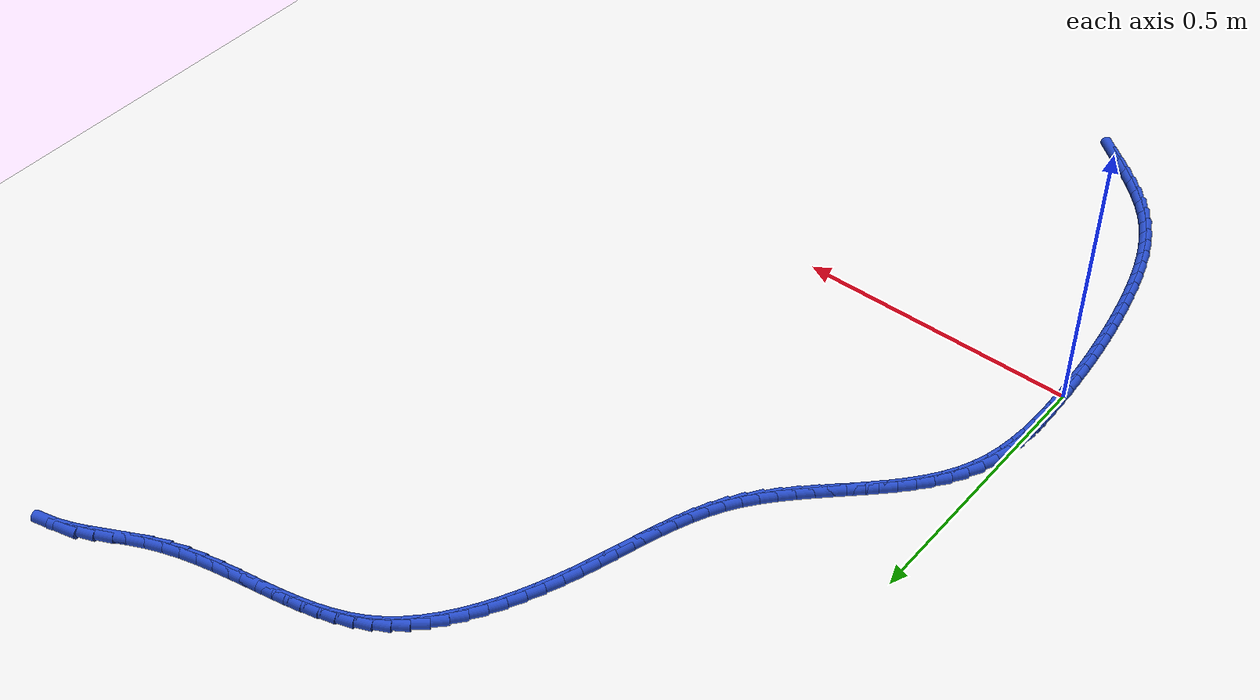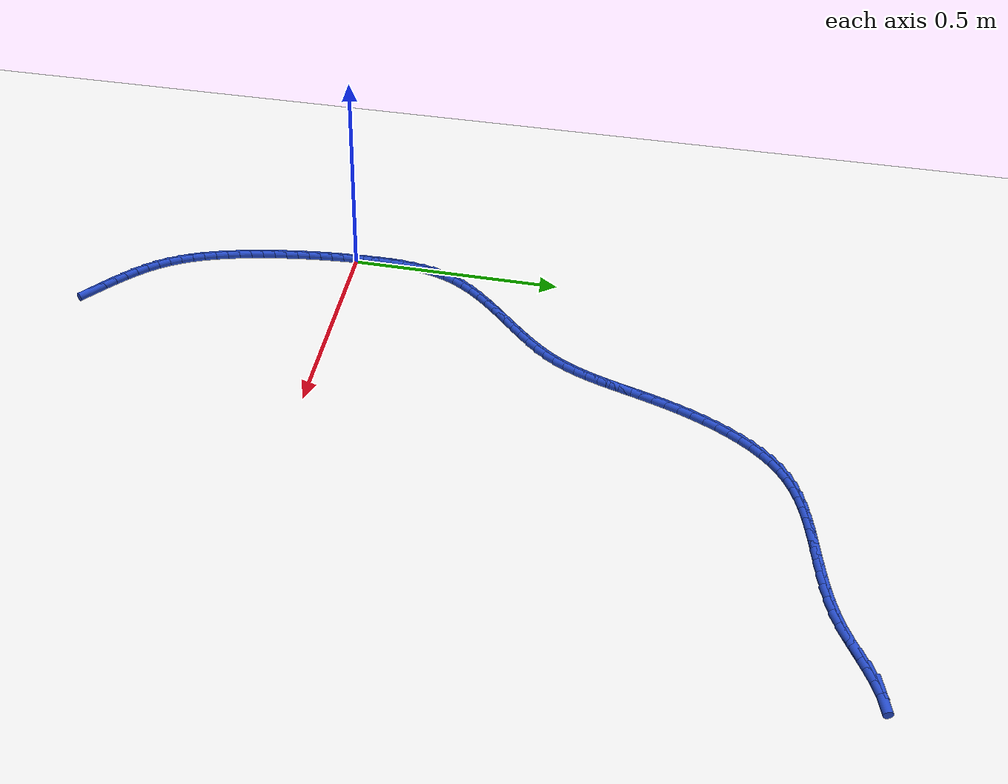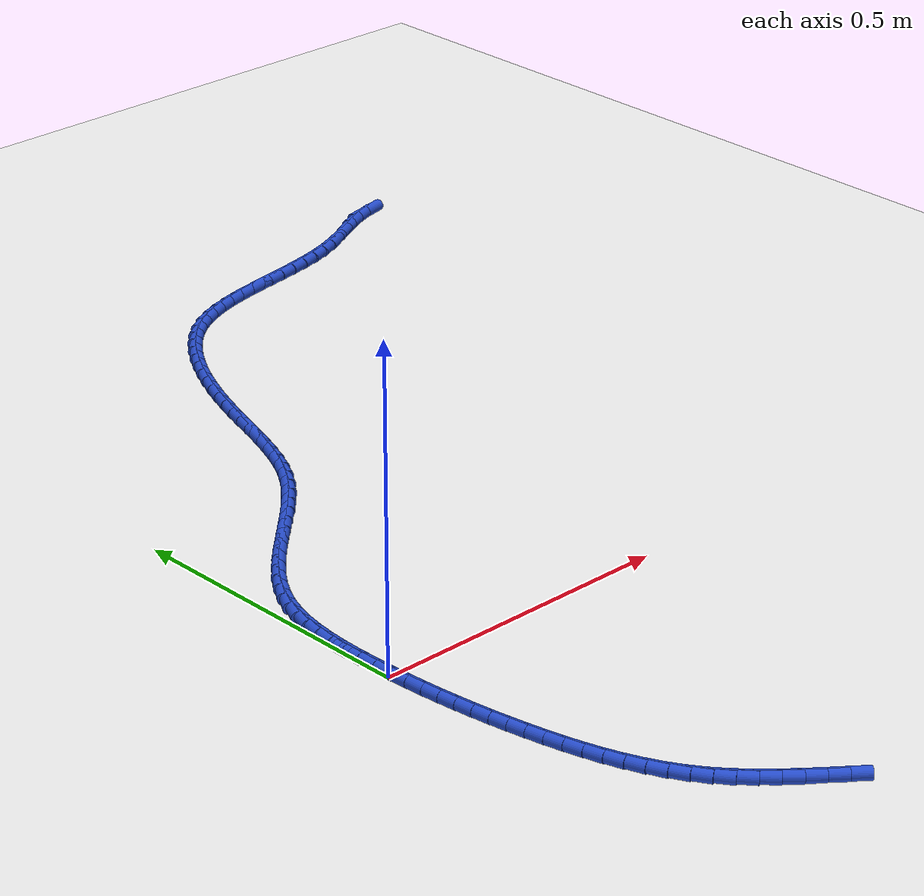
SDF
<sdf version="1.6">
 <world name="default">
  <model name="ground_plane">
   <static>1</static>
   <link name="link">
    <collision name="collision">
     <geometry><plane><normal>0 0 1</normal><size>100 100</size></plane></geometry>
     <surface><friction><ode><mu>100</mu><mu2>50</mu2></ode></friction></surface>
    </collision>
    <visual name="visual">
     <cast_shadows>0</cast_shadows>
     <geometry><plane><normal>0 0 1</normal><size>100 100</size></plane></geometry>
     <material>
      <script><uri>file://media/materials/scripts/gazebo.material</uri><name>Gazebo/WhiteGlow</name></script>
     </material>
    </visual>
   </link>
  </model>
  <model name="line">
   <link name="link_0">
    <pose>-1.5016200088924236e-17 -4.163336342344337e-17 0.01 0 1.57 -1.5311288016451743</pose>
    <collision name="collision">
     <geometry><cylinder><radius>0.01</radius><length>0.08</length></cylinder></geometry>
    </collision>
    <visual name="visual">
     <material>
      <script><name>Gazebo/Blue</name><uri>file://media/materials/scripts/gazebo.material</uri></script>
     </material>
     <geometry><cylinder><radius>0.01</radius><length>0.08</length></cylinder></geometry>
    </visual>
   </link>
   <link name="link_1">
    <pose>-0.001174265937929834 0.02958717392838835 0.01 0 1.57 -1.5547759416217406</pose>
    <collision name="collision">
     <geometry><cylinder><radius>0.01</radius><length>0.08</length></cylinder></geometry>
    </collision>
    <visual name="visual">
     <material>
      <script><name>Gazebo/Blue</name><uri>file://media/materials/scripts/gazebo.material</uri></script>
     </material>
     <geometry><cylinder><radius>0.01</radius><length>0.08</length></cylinder></geometry>
    </visual>
   </link>
   <link name="link_2">
    <pose>-0.0016509662810044198 0.059340488538174856 0.01 0 1.57 1.554361322726253</pose>
    <collision name="collision">
     <geometry><cylinder><radius>0.01</radius><length>0.08</length></cylinder></geometry>
    </collision>
    <visual name="visual">
     <material>
      <script><name>Gazebo/Blue</name><uri>file://media/materials/scripts/gazebo.material</uri></script>
     </material>
     <geometry><cylinder><radius>0.01</radius><length>0.08</length></cylinder></geometry>
    </visual>
   </link>
   <link name="link_3">
    <pose>-0.0011624860198070212 0.08905975586146364 0.01 0 1.57 1.512484553610487</pose>
    <collision name="collision">
     <geometry><cylinder><radius>0.01</radius><length>0.08</length></cylinder></geometry>
    </collision>
    <visual name="visual">
     <material>
      <script><name>Gazebo/Blue</name><uri>file://media/materials/scripts/gazebo.material</uri></script>
     </material>
     <geometry><cylinder><radius>0.01</radius><length>0.08</length></cylinder></geometry>
    </visual>
   </link>
   <link name="link_4">
    <pose>0.0005587898550791126 0.11854478793035901 0.01 0 1.57 1.460348531937159</pose>
    <collision name="collision">
     <geometry><cylinder><radius>0.01</radius><length>0.08</length></cylinder></geometry>
    </collision>
    <visual name="visual">
     <material>
      <script><name>Gazebo/Blue</name><uri>file://media/materials/scripts/gazebo.material</uri></script>
     </material>
     <geometry><cylinder><radius>0.01</radius><length>0.08</length></cylinder></geometry>
    </visual>
   </link>
   <link name="link_5">
    <pose>0.0037804763530707333 0.14759539677696512 0.01 0 1.57 1.396973227693927</pose>
    <collision name="collision">
     <geometry><cylinder><radius>0.01</radius><length>0.08</length></cylinder></geometry>
    </collision>
    <visual name="visual">
     <material>
      <script><name>Gazebo/Blue</name><uri>file://media/materials/scripts/gazebo.material</uri></script>
     </material>
     <geometry><cylinder><radius>0.01</radius><length>0.08</length></cylinder></geometry>
    </visual>
   </link>
   <link name="link_6">
    <pose>0.00877018848358459 0.17601139443338618 0.01 0 1.57 1.321384697896744</pose>
    <collision name="collision">
     <geometry><cylinder><radius>0.01</radius><length>0.08</length></cylinder></geometry>
    </collision>
    <visual name="visual">
     <material>
      <script><name>Gazebo/Blue</name><uri>file://media/materials/scripts/gazebo.material</uri></script>
     </material>
     <geometry><cylinder><radius>0.01</radius><length>0.08</length></cylinder></geometry>
    </visual>
   </link>
   <link name="link_7">
    <pose>0.015795541256037438 0.20359259293172652 0.01 0 1.57 1.2328657916615506</pose>
    <collision name="collision">
     <geometry><cylinder><radius>0.01</radius><length>0.08</length></cylinder></geometry>
    </collision>
    <visual name="visual">
     <material>
      <script><name>Gazebo/Blue</name><uri>file://media/materials/scripts/gazebo.material</uri></script>
     </material>
     <geometry><cylinder><radius>0.01</radius><length>0.08</length></cylinder></geometry>
    </visual>
   </link>
   <link name="link_8">
    <pose>0.025124149679846018 0.23013880430409017 0.01 0 1.57 1.1324884987083297</pose>
    <collision name="collision">
     <geometry><cylinder><radius>0.01</radius><length>0.08</length></cylinder></geometry>
    </collision>
    <visual name="visual">
     <material>
      <script><name>Gazebo/Blue</name><uri>file://media/materials/scripts/gazebo.material</uri></script>
     </material>
     <geometry><cylinder><radius>0.01</radius><length>0.08</length></cylinder></geometry>
    </visual>
   </link>
   <link name="link_9">
    <pose>0.03699568034891773 0.25546662994324726 0.01 0 1.57 1.0359682667533752</pose>
    <collision name="collision">
     <geometry><cylinder><radius>0.01</radius><length>0.08</length></cylinder></geometry>
    </collision>
    <visual name="visual">
     <material>
      <script><name>Gazebo/Blue</name><uri>file://media/materials/scripts/gazebo.material</uri></script>
     </material>
     <geometry><cylinder><radius>0.01</radius><length>0.08</length></cylinder></geometry>
    </visual>
   </link>
   <link name="link_10">
    <pose>0.05129591208374488 0.27960526109204537 0.01 0 1.57 0.9547310295436591</pose>
    <collision name="collision">
     <geometry><cylinder><radius>0.01</radius><length>0.08</length></cylinder></geometry>
    </collision>
    <visual name="visual">
     <material>
      <script><name>Gazebo/Blue</name><uri>file://media/materials/scripts/gazebo.material</uri></script>
     </material>
     <geometry><cylinder><radius>0.01</radius><length>0.08</length></cylinder></geometry>
    </visual>
   </link>
   <link name="link_11">
    <pose>0.06766774557786781 0.3027297923798709 0.01 0 1.57 0.8892296630248957</pose>
    <collision name="collision">
     <geometry><cylinder><radius>0.01</radius><length>0.08</length></cylinder></geometry>
    </collision>
    <visual name="visual">
     <material>
      <script><name>Gazebo/Blue</name><uri>file://media/materials/scripts/gazebo.material</uri></script>
     </material>
     <geometry><cylinder><radius>0.01</radius><length>0.08</length></cylinder></geometry>
    </visual>
   </link>
   <link name="link_12">
    <pose>0.08574932593044152 0.32501817524884397 0.01 0 1.57 0.8389448791662363</pose>
    <collision name="collision">
     <geometry><cylinder><radius>0.01</radius><length>0.08</length></cylinder></geometry>
    </collision>
    <visual name="visual">
     <material>
      <script><name>Gazebo/Blue</name><uri>file://media/materials/scripts/gazebo.material</uri></script>
     </material>
     <geometry><cylinder><radius>0.01</radius><length>0.08</length></cylinder></geometry>
    </visual>
   </link>
   <link name="link_13">
    <pose>0.10517879824062105 0.34664836114108466 0.01 0 1.57 0.8030655910172035</pose>
    <collision name="collision">
     <geometry><cylinder><radius>0.01</radius><length>0.08</length></cylinder></geometry>
    </collision>
    <visual name="visual">
     <material>
      <script><name>Gazebo/Blue</name><uri>file://media/materials/scripts/gazebo.material</uri></script>
     </material>
     <geometry><cylinder><radius>0.01</radius><length>0.08</length></cylinder></geometry>
    </visual>
   </link>
   <link name="link_14">
    <pose>0.1255943076075614 0.3677983014987131 0.01 0 1.57 0.7808133909517982</pose>
    <collision name="collision">
     <geometry><cylinder><radius>0.01</radius><length>0.08</length></cylinder></geometry>
    </collision>
    <visual name="visual">
     <material>
      <script><name>Gazebo/Blue</name><uri>file://media/materials/scripts/gazebo.material</uri></script>
     </material>
     <geometry><cylinder><radius>0.01</radius><length>0.08</length></cylinder></geometry>
    </visual>
   </link>
   <link name="link_15">
    <pose>0.14663399913041758 0.3886459477638494 0.01 0 1.57 0.7716284037919562</pose>
    <collision name="collision">
     <geometry><cylinder><radius>0.01</radius><length>0.08</length></cylinder></geometry>
    </collision>
    <visual name="visual">
     <material>
      <script><name>Gazebo/Blue</name><uri>file://media/materials/scripts/gazebo.material</uri></script>
     </material>
     <geometry><cylinder><radius>0.01</radius><length>0.08</length></cylinder></geometry>
    </visual>
   </link>
   <link name="link_16">
    <pose>0.1679360179083446 0.40936925137861374 0.01 0 1.57 0.7752607123844468</pose>
    <collision name="collision">
     <geometry><cylinder><radius>0.01</radius><length>0.08</length></cylinder></geometry>
    </collision>
    <visual name="visual">
     <material>
      <script><name>Gazebo/Blue</name><uri>file://media/materials/scripts/gazebo.material</uri></script>
     </material>
     <geometry><cylinder><radius>0.01</radius><length>0.08</length></cylinder></geometry>
    </visual>
   </link>
   <link name="link_17">
    <pose>0.1891385090404975 0.43014616378512605 0.01 0 1.57 0.7918020695473644</pose>
    <collision name="collision">
     <geometry><cylinder><radius>0.01</radius><length>0.08</length></cylinder></geometry>
    </collision>
    <visual name="visual">
     <material>
      <script><name>Gazebo/Blue</name><uri>file://media/materials/scripts/gazebo.material</uri></script>
     </material>
     <geometry><cylinder><radius>0.01</radius><length>0.08</length></cylinder></geometry>
    </visual>
   </link>
   <link name="link_18">
    <pose>0.20987961762603127 0.45115463642550674 0.01 0 1.57 0.8216730903169859</pose>
    <collision name="collision">
     <geometry><cylinder><radius>0.01</radius><length>0.08</length></cylinder></geometry>
    </collision>
    <visual name="visual">
     <material>
      <script><name>Gazebo/Blue</name><uri>file://media/materials/scripts/gazebo.material</uri></script>
     </material>
     <geometry><cylinder><radius>0.01</radius><length>0.08</length></cylinder></geometry>
    </visual>
   </link>
   <link name="link_19">
    <pose>0.22979748876410092 0.4725726207418756 0.01 0 1.57 0.8655601133314805</pose>
    <collision name="collision">
     <geometry><cylinder><radius>0.01</radius><length>0.08</length></cylinder></geometry>
    </collision>
    <visual name="visual">
     <material>
      <script><name>Gazebo/Blue</name><uri>file://media/materials/scripts/gazebo.material</uri></script>
     </material>
     <geometry><cylinder><radius>0.01</radius><length>0.08</length></cylinder></geometry>
    </visual>
   </link>
   <link name="link_20">
    <pose>0.24853026755386146 0.49457806817635297 0.01 0 1.57 0.9242754758352315</pose>
    <collision name="collision">
     <geometry><cylinder><radius>0.01</radius><length>0.08</length></cylinder></geometry>
    </collision>
    <visual name="visual">
     <material>
      <script><name>Gazebo/Blue</name><uri>file://media/materials/scripts/gazebo.material</uri></script>
     </material>
     <geometry><cylinder><radius>0.01</radius><length>0.08</length></cylinder></geometry>
    </visual>
   </link>
   <link name="link_21">
    <pose>0.26571609909446803 0.517348930171059 0.01 0 1.57 0.9979697683734182</pose>
    <collision name="collision">
     <geometry><cylinder><radius>0.01</radius><length>0.08</length></cylinder></geometry>
    </collision>
    <visual name="visual">
     <material>
      <script><name>Gazebo/Blue</name><uri>file://media/materials/scripts/gazebo.material</uri></script>
     </material>
     <geometry><cylinder><radius>0.01</radius><length>0.08</length></cylinder></geometry>
    </visual>
   </link>
   <link name="link_22">
    <pose>0.2810072242214734 0.5410574379976409 0.01 0 1.57 1.0741629369633323</pose>
    <collision name="collision">
     <geometry><cylinder><radius>0.01</radius><length>0.08</length></cylinder></geometry>
    </collision>
    <visual name="visual">
     <material>
      <script><name>Gazebo/Blue</name><uri>file://media/materials/scripts/gazebo.material</uri></script>
     </material>
     <geometry><cylinder><radius>0.01</radius><length>0.08</length></cylinder></geometry>
    </visual>
   </link>
   <link name="link_23">
    <pose>0.2943849162970617 0.565742298712326 0.01 0 1.57 1.1391013435100492</pose>
    <collision name="collision">
     <geometry><cylinder><radius>0.01</radius><length>0.08</length></cylinder></geometry>
    </collision>
    <visual name="visual">
     <material>
      <script><name>Gazebo/Blue</name><uri>file://media/materials/scripts/gazebo.material</uri></script>
     </material>
     <geometry><cylinder><radius>0.01</radius><length>0.08</length></cylinder></geometry>
    </visual>
   </link>
   <link name="link_24">
    <pose>0.3061621874583513 0.5913075969371968 0.01 0 1.57 1.1913720280829216</pose>
    <collision name="collision">
     <geometry><cylinder><radius>0.01</radius><length>0.08</length></cylinder></geometry>
    </collision>
    <visual name="visual">
     <material>
      <script><name>Gazebo/Blue</name><uri>file://media/materials/scripts/gazebo.material</uri></script>
     </material>
     <geometry><cylinder><radius>0.01</radius><length>0.08</length></cylinder></geometry>
    </visual>
   </link>
   <link name="link_25">
    <pose>0.3166666868399034 0.6176514774754983 0.01 0 1.57 1.2307571406425042</pose>
    <collision name="collision">
     <geometry><cylinder><radius>0.01</radius><length>0.08</length></cylinder></geometry>
    </collision>
    <visual name="visual">
     <material>
      <script><name>Gazebo/Blue</name><uri>file://media/materials/scripts/gazebo.material</uri></script>
     </material>
     <geometry><cylinder><radius>0.01</radius><length>0.08</length></cylinder></geometry>
    </visual>
   </link>
   <link name="link_26">
    <pose>0.32622606357627965 0.6446720851304766 0.01 0 1.57 1.2574374189947841</pose>
    <collision name="collision">
     <geometry><cylinder><radius>0.01</radius><length>0.08</length></cylinder></geometry>
    </collision>
    <visual name="visual">
     <material>
      <script><name>Gazebo/Blue</name><uri>file://media/materials/scripts/gazebo.material</uri></script>
     </material>
     <geometry><cylinder><radius>0.01</radius><length>0.08</length></cylinder></geometry>
    </visual>
   </link>
   <link name="link_27">
    <pose>0.3351679668020412 0.6722675647053767 0.01 0 1.57 1.2717891587557226</pose>
    <collision name="collision">
     <geometry><cylinder><radius>0.01</radius><length>0.08</length></cylinder></geometry>
    </collision>
    <visual name="visual">
     <material>
      <script><name>Gazebo/Blue</name><uri>file://media/materials/scripts/gazebo.material</uri></script>
     </material>
     <geometry><cylinder><radius>0.01</radius><length>0.08</length></cylinder></geometry>
    </visual>
   </link>
   <link name="link_28">
    <pose>0.3438200456517494 0.7003360610034441 0.01 0 1.57 1.2742502552433834</pose>
    <collision name="collision">
     <geometry><cylinder><radius>0.01</radius><length>0.08</length></cylinder></geometry>
    </collision>
    <visual name="visual">
     <material>
      <script><name>Gazebo/Blue</name><uri>file://media/materials/scripts/gazebo.material</uri></script>
     </material>
     <geometry><cylinder><radius>0.01</radius><length>0.08</length></cylinder></geometry>
    </visual>
   </link>
   <link name="link_29">
    <pose>0.35250994925996565 0.7287757188279242 0.01 0 1.57 1.2652535866409103</pose>
    <collision name="collision">
     <geometry><cylinder><radius>0.01</radius><length>0.08</length></cylinder></geometry>
    </collision>
    <visual name="visual">
     <material>
      <script><name>Gazebo/Blue</name><uri>file://media/materials/scripts/gazebo.material</uri></script>
     </material>
     <geometry><cylinder><radius>0.01</radius><length>0.08</length></cylinder></geometry>
    </visual>
   </link>
   <link name="link_30">
    <pose>0.3615653267612513 0.7574846829820628 0.01 0 1.57 1.245582630229372</pose>
    <collision name="collision">
     <geometry><cylinder><radius>0.01</radius><length>0.08</length></cylinder></geometry>
    </collision>
    <visual name="visual">
     <material>
      <script><name>Gazebo/Blue</name><uri>file://media/materials/scripts/gazebo.material</uri></script>
     </material>
     <geometry><cylinder><radius>0.01</radius><length>0.08</length></cylinder></geometry>
    </visual>
   </link>
   <link name="link_31">
    <pose>0.37129936071062236 0.786353146374145 0.01 0 1.57 1.2193768277337889</pose>
    <collision name="collision">
     <geometry><cylinder><radius>0.01</radius><length>0.08</length></cylinder></geometry>
    </collision>
    <visual name="visual">
     <material>
      <script><name>Gazebo/Blue</name><uri>file://media/materials/scripts/gazebo.material</uri></script>
     </material>
     <geometry><cylinder><radius>0.01</radius><length>0.08</length></cylinder></geometry>
    </visual>
   </link>
   <link name="link_32">
    <pose>0.38187071407639517 0.8151863665952443 0.01 0 1.57 1.1886893198190853</pose>
    <collision name="collision">
     <geometry><cylinder><radius>0.01</radius><length>0.08</length></cylinder></geometry>
    </collision>
    <visual name="visual">
     <material>
      <script><name>Gazebo/Blue</name><uri>file://media/materials/scripts/gazebo.material</uri></script>
     </material>
     <geometry><cylinder><radius>0.01</radius><length>0.08</length></cylinder></geometry>
    </visual>
   </link>
   <link name="link_33">
    <pose>0.39334448231849006 0.8437381696595311 0.01 0 1.57 1.1530164887138044</pose>
    <collision name="collision">
     <geometry><cylinder><radius>0.01</radius><length>0.08</length></cylinder></geometry>
    </collision>
    <visual name="visual">
     <material>
      <script><name>Gazebo/Blue</name><uri>file://media/materials/scripts/gazebo.material</uri></script>
     </material>
     <geometry><cylinder><radius>0.01</radius><length>0.08</length></cylinder></geometry>
    </visual>
   </link>
   <link name="link_34">
    <pose>0.4057844547920023 0.8717616636500055 0.01 0 1.57 1.1116856371248138</pose>
    <collision name="collision">
     <geometry><cylinder><radius>0.01</radius><length>0.08</length></cylinder></geometry>
    </collision>
    <visual name="visual">
     <material>
      <script><name>Gazebo/Blue</name><uri>file://media/materials/scripts/gazebo.material</uri></script>
     </material>
     <geometry><cylinder><radius>0.01</radius><length>0.08</length></cylinder></geometry>
    </visual>
   </link>
   <link name="link_35">
    <pose>0.41925442085202713 0.8990099566496682 0.01 0 1.57 1.06388321531544</pose>
    <collision name="collision">
     <geometry><cylinder><radius>0.01</radius><length>0.08</length></cylinder></geometry>
    </collision>
    <visual name="visual">
     <material>
      <script><name>Gazebo/Blue</name><uri>file://media/materials/scripts/gazebo.material</uri></script>
     </material>
     <geometry><cylinder><radius>0.01</radius><length>0.08</length></cylinder></geometry>
    </visual>
   </link>
   <link name="link_36">
    <pose>0.4338181698536592 0.9252361567415188 0.01 0 1.57 1.0086590446963872</pose>
    <collision name="collision">
     <geometry><cylinder><radius>0.01</radius><length>0.08</length></cylinder></geometry>
    </collision>
    <visual name="visual">
     <material>
      <script><name>Gazebo/Blue</name><uri>file://media/materials/scripts/gazebo.material</uri></script>
     </material>
     <geometry><cylinder><radius>0.01</radius><length>0.08</length></cylinder></geometry>
    </visual>
   </link>
   <link name="link_37">
    <pose>0.4495394911519939 0.9501933720085578 0.01 0 1.57 0.9449517527124083</pose>
    <collision name="collision">
     <geometry><cylinder><radius>0.01</radius><length>0.08</length></cylinder></geometry>
    </collision>
    <visual name="visual">
     <material>
      <script><name>Gazebo/Blue</name><uri>file://media/materials/scripts/gazebo.material</uri></script>
     </material>
     <geometry><cylinder><radius>0.01</radius><length>0.08</length></cylinder></geometry>
    </visual>
   </link>
   <link name="link_38">
    <pose>0.46648217410212645 0.973634710533786 0.01 0 1.57 0.8716543368457267</pose>
    <collision name="collision">
     <geometry><cylinder><radius>0.01</radius><length>0.08</length></cylinder></geometry>
    </collision>
    <visual name="visual">
     <material>
      <script><name>Gazebo/Blue</name><uri>file://media/materials/scripts/gazebo.material</uri></script>
     </material>
     <geometry><cylinder><radius>0.01</radius><length>0.08</length></cylinder></geometry>
    </visual>
   </link>
   <link name="link_39">
    <pose>0.4847100080591516 0.995313280400203 0.01 0 1.57 0.7877458050704825</pose>
    <collision name="collision">
     <geometry><cylinder><radius>0.01</radius><length>0.08</length></cylinder></geometry>
    </collision>
    <visual name="visual">
     <material>
      <script><name>Gazebo/Blue</name><uri>file://media/materials/scripts/gazebo.material</uri></script>
     </material>
     <geometry><cylinder><radius>0.01</radius><length>0.08</length></cylinder></geometry>
    </visual>
   </link>
   <link name="link_40">
    <pose>0.5042867823781646 1.0149821896908096 0.01 0 1.57 0.6925158289524688</pose>
    <collision name="collision">
     <geometry><cylinder><radius>0.01</radius><length>0.08</length></cylinder></geometry>
    </collision>
    <visual name="visual">
     <material>
      <script><name>Gazebo/Blue</name><uri>file://media/materials/scripts/gazebo.material</uri></script>
     </material>
     <geometry><cylinder><radius>0.01</radius><length>0.08</length></cylinder></geometry>
    </visual>
   </link>
   <link name="link_41">
    <pose>0.5252762864142605 1.0323945464886053 0.01 0 1.57 0.5861597651782825</pose>
    <collision name="collision">
     <geometry><cylinder><radius>0.01</radius><length>0.08</length></cylinder></geometry>
    </collision>
    <visual name="visual">
     <material>
      <script><name>Gazebo/Blue</name><uri>file://media/materials/scripts/gazebo.material</uri></script>
     </material>
     <geometry><cylinder><radius>0.01</radius><length>0.08</length></cylinder></geometry>
    </visual>
   </link>
   <link name="link_42">
    <pose>0.5477396904743252 1.047310427666039 0.01 0 1.57 0.47980976713616075</pose>
    <collision name="collision">
     <geometry><cylinder><radius>0.01</radius><length>0.08</length></cylinder></geometry>
    </collision>
    <visual name="visual">
     <material>
      <script><name>Gazebo/Blue</name><uri>file://media/materials/scripts/gazebo.material</uri></script>
     </material>
     <geometry><cylinder><radius>0.01</radius><length>0.08</length></cylinder></geometry>
    </visual>
   </link>
   <link name="link_43">
    <pose>0.5716411626215503 1.0597480146275238 0.01 0 1.57 0.38847029238546765</pose>
    <collision name="collision">
     <geometry><cylinder><radius>0.01</radius><length>0.08</length></cylinder></geometry>
    </collision>
    <visual name="visual">
     <material>
      <script><name>Gazebo/Blue</name><uri>file://media/materials/scripts/gazebo.material</uri></script>
     </material>
     <geometry><cylinder><radius>0.01</radius><length>0.08</length></cylinder></geometry>
    </visual>
   </link>
   <link name="link_44">
    <pose>0.5968215774885719 1.0700535491601595 0.01 0 1.57 0.31409264425457817</pose>
    <collision name="collision">
     <geometry><cylinder><radius>0.01</radius><length>0.08</length></cylinder></geometry>
    </collision>
    <visual name="visual">
     <material>
      <script><name>Gazebo/Blue</name><uri>file://media/materials/scripts/gazebo.material</uri></script>
     </material>
     <geometry><cylinder><radius>0.01</radius><length>0.08</length></cylinder></geometry>
    </visual>
   </link>
   <link name="link_45">
    <pose>0.6231138374282352 1.078594485772173 0.01 0 1.57 0.25650493725613693</pose>
    <collision name="collision">
     <geometry><cylinder><radius>0.01</radius><length>0.08</length></cylinder></geometry>
    </collision>
    <visual name="visual">
     <material>
      <script><name>Gazebo/Blue</name><uri>file://media/materials/scripts/gazebo.material</uri></script>
     </material>
     <geometry><cylinder><radius>0.01</radius><length>0.08</length></cylinder></geometry>
    </visual>
   </link>
   <link name="link_46">
    <pose>0.6503508447933862 1.0857382789717926 0.01 0 1.57 0.21487725893842557</pose>
    <collision name="collision">
     <geometry><cylinder><radius>0.01</radius><length>0.08</length></cylinder></geometry>
    </collision>
    <visual name="visual">
     <material>
      <script><name>Gazebo/Blue</name><uri>file://media/materials/scripts/gazebo.material</uri></script>
     </material>
     <geometry><cylinder><radius>0.01</radius><length>0.08</length></cylinder></geometry>
    </visual>
   </link>
   <link name="link_47">
    <pose>0.6783655019368693 1.0918523832672455 0.01 0 1.57 0.1882029332642791</pose>
    <collision name="collision">
     <geometry><cylinder><radius>0.01</radius><length>0.08</length></cylinder></geometry>
    </collision>
    <visual name="visual">
     <material>
      <script><name>Gazebo/Blue</name><uri>file://media/materials/scripts/gazebo.material</uri></script>
     </material>
     <geometry><cylinder><radius>0.01</radius><length>0.08</length></cylinder></geometry>
    </visual>
   </link>
   <link name="link_48">
    <pose>0.7069907112115298 1.0973042531667592 0.01 0 1.57 0.17558370539319626</pose>
    <collision name="collision">
     <geometry><cylinder><radius>0.01</radius><length>0.08</length></cylinder></geometry>
    </collision>
    <visual name="visual">
     <material>
      <script><name>Gazebo/Blue</name><uri>file://media/materials/scripts/gazebo.material</uri></script>
     </material>
     <geometry><cylinder><radius>0.01</radius><length>0.08</length></cylinder></geometry>
    </visual>
   </link>
   <link name="link_49">
    <pose>0.7360593749702127 1.102461343178561 0.01 0 1.57 0.17636480083615735</pose>
    <collision name="collision">
     <geometry><cylinder><radius>0.01</radius><length>0.08</length></cylinder></geometry>
    </collision>
    <visual name="visual">
     <material>
      <script><name>Gazebo/Blue</name><uri>file://media/materials/scripts/gazebo.material</uri></script>
     </material>
     <geometry><cylinder><radius>0.01</radius><length>0.08</length></cylinder></geometry>
    </visual>
   </link>
   <link name="link_50">
    <pose>0.7654043955657637 1.1076911078108789 0.01 0 1.57 0.19017192688713616</pose>
    <collision name="collision">
     <geometry><cylinder><radius>0.01</radius><length>0.08</length></cylinder></geometry>
    </collision>
    <visual name="visual">
     <material>
      <script><name>Gazebo/Blue</name><uri>file://media/materials/scripts/gazebo.material</uri></script>
     </material>
     <geometry><cylinder><radius>0.01</radius><length>0.08</length></cylinder></geometry>
    </visual>
   </link>
   <link name="link_51">
    <pose>0.7948586753510278 1.1133610015719406 0.01 0 1.57 0.21688319954885313</pose>
    <collision name="collision">
     <geometry><cylinder><radius>0.01</radius><length>0.08</length></cylinder></geometry>
    </collision>
    <visual name="visual">
     <material>
      <script><name>Gazebo/Blue</name><uri>file://media/materials/scripts/gazebo.material</uri></script>
     </material>
     <geometry><cylinder><radius>0.01</radius><length>0.08</length></cylinder></geometry>
    </visual>
   </link>
   <link name="link_52">
    <pose>0.8242551166788498 1.1198384789699727 0.01 0 1.57 0.25654782590523983</pose>
    <collision name="collision">
     <geometry><cylinder><radius>0.01</radius><length>0.08</length></cylinder></geometry>
    </collision>
    <visual name="visual">
     <material>
      <script><name>Gazebo/Blue</name><uri>file://media/materials/scripts/gazebo.material</uri></script>
     </material>
     <geometry><cylinder><radius>0.01</radius><length>0.08</length></cylinder></geometry>
    </visual>
   </link>
   <link name="link_53">
    <pose>0.8534266219020752 1.1274909945132037 0.01 0 1.57 0.3092482843550311</pose>
    <collision name="collision">
     <geometry><cylinder><radius>0.01</radius><length>0.08</length></cylinder></geometry>
    </collision>
    <visual name="visual">
     <material>
      <script><name>Gazebo/Blue</name><uri>file://media/materials/scripts/gazebo.material</uri></script>
     </material>
     <geometry><cylinder><radius>0.01</radius><length>0.08</length></cylinder></geometry>
    </visual>
   </link>
   <link name="link_54">
    <pose>0.8822060933735488 1.1366860027098602 0.01 0 1.57 0.3748933982670792</pose>
    <collision name="collision">
     <geometry><cylinder><radius>0.01</radius><length>0.08</length></cylinder></geometry>
    </collision>
    <visual name="visual">
     <material>
      <script><name>Gazebo/Blue</name><uri>file://media/materials/scripts/gazebo.material</uri></script>
     </material>
     <geometry><cylinder><radius>0.01</radius><length>0.08</length></cylinder></geometry>
    </visual>
   </link>
   <link name="link_55">
    <pose>0.910426465148928 1.1477908167104476 0.01 0 1.57 0.4423941153000885</pose>
    <collision name="collision">
     <geometry><cylinder><radius>0.01</radius><length>0.08</length></cylinder></geometry>
    </collision>
    <visual name="visual">
     <material>
      <script><name>Gazebo/Blue</name><uri>file://media/materials/scripts/gazebo.material</uri></script>
     </material>
     <geometry><cylinder><radius>0.01</radius><length>0.08</length></cylinder></geometry>
    </visual>
   </link>
   <link name="link_56">
    <pose>0.937993187969242 1.1608494094594837 0.01 0 1.57 0.47893486279791403</pose>
    <collision name="collision">
     <geometry><cylinder><radius>0.01</radius><length>0.08</length></cylinder></geometry>
    </collision>
    <visual name="visual">
     <material>
      <script><name>Gazebo/Blue</name><uri>file://media/materials/scripts/gazebo.material</uri></script>
     </material>
     <geometry><cylinder><radius>0.01</radius><length>0.08</length></cylinder></geometry>
    </visual>
   </link>
   <link name="link_57">
    <pose>0.9650388309628827 1.1748930696375326 0.01 0 1.57 0.47885646915655644</pose>
    <collision name="collision">
     <geometry><cylinder><radius>0.01</radius><length>0.08</length></cylinder></geometry>
    </collision>
    <visual name="visual">
     <material>
      <script><name>Gazebo/Blue</name><uri>file://media/materials/scripts/gazebo.material</uri></script>
     </material>
     <geometry><cylinder><radius>0.01</radius><length>0.08</length></cylinder></geometry>
    </visual>
   </link>
   <link name="link_58">
    <pose>0.9917403076815139 1.1887553612928003 0.01 0 1.57 0.4406997888402698</pose>
    <collision name="collision">
     <geometry><cylinder><radius>0.01</radius><length>0.08</length></cylinder></geometry>
    </collision>
    <visual name="visual">
     <material>
      <script><name>Gazebo/Blue</name><uri>file://media/materials/scripts/gazebo.material</uri></script>
     </material>
     <geometry><cylinder><radius>0.01</radius><length>0.08</length></cylinder></geometry>
    </visual>
   </link>
   <link name="link_59">
    <pose>1.0182745316768 1.2012698484734925 0.01 0 1.57 0.3602986937750224</pose>
    <collision name="collision">
     <geometry><cylinder><radius>0.01</radius><length>0.08</length></cylinder></geometry>
    </collision>
    <visual name="visual">
     <material>
      <script><name>Gazebo/Blue</name><uri>file://media/materials/scripts/gazebo.material</uri></script>
     </material>
     <geometry><cylinder><radius>0.01</radius><length>0.08</length></cylinder></geometry>
    </visual>
   </link>
   <link name="link_60">
    <pose>1.0448184165004042 1.2112700952278148 0.01 0 1.57 0.23215563186837848</pose>
    <collision name="collision">
     <geometry><cylinder><radius>0.01</radius><length>0.08</length></cylinder></geometry>
    </collision>
    <visual name="visual">
     <material>
      <script><name>Gazebo/Blue</name><uri>file://media/materials/scripts/gazebo.material</uri></script>
     </material>
     <geometry><cylinder><radius>0.01</radius><length>0.08</length></cylinder></geometry>
    </visual>
   </link>
   <link name="link_237">
    <pose>0.24583499603651587 -0.5899819188562594 0.01 0 1.57 -0.6688857576873237</pose>
    <collision name="collision">
     <geometry><cylinder><radius>0.01</radius><length>0.08</length></cylinder></geometry>
    </collision>
    <visual name="visual">
     <material>
      <script><name>Gazebo/Blue</name><uri>file://media/materials/scripts/gazebo.material</uri></script>
     </material>
     <geometry><cylinder><radius>0.01</radius><length>0.08</length></cylinder></geometry>
    </visual>
   </link>
   <link name="link_238">
    <pose>0.2227679727964301 -0.5717487712167355 0.01 0 1.57 -0.6862009721602085</pose>
    <collision name="collision">
     <geometry><cylinder><radius>0.01</radius><length>0.08</length></cylinder></geometry>
    </collision>
    <visual name="visual">
     <material>
      <script><name>Gazebo/Blue</name><uri>file://media/materials/scripts/gazebo.material</uri></script>
     </material>
     <geometry><cylinder><radius>0.01</radius><length>0.08</length></cylinder></geometry>
    </visual>
   </link>
   <link name="link_239">
    <pose>0.20009623833379198 -0.5531813192190953 0.01 0 1.57 -0.7159174954453853</pose>
    <collision name="collision">
     <geometry><cylinder><radius>0.01</radius><length>0.08</length></cylinder></geometry>
    </collision>
    <visual name="visual">
     <material>
      <script><name>Gazebo/Blue</name><uri>file://media/materials/scripts/gazebo.material</uri></script>
     </material>
     <geometry><cylinder><radius>0.01</radius><length>0.08</length></cylinder></geometry>
    </visual>
   </link>
   <link name="link_240">
    <pose>0.17812126967053965 -0.5340659385681972 0.01 0 1.57 -0.7584843764979935</pose>
    <collision name="collision">
     <geometry><cylinder><radius>0.01</radius><length>0.08</length></cylinder></geometry>
    </collision>
    <visual name="visual">
     <material>
      <script><name>Gazebo/Blue</name><uri>file://media/materials/scripts/gazebo.material</uri></script>
     </material>
     <geometry><cylinder><radius>0.01</radius><length>0.08</length></cylinder></geometry>
    </visual>
   </link>
   <link name="link_241">
    <pose>0.15714454382861104 -0.5141890049688995 0.01 0 1.57 -0.814384132372838</pose>
    <collision name="collision">
     <geometry><cylinder><radius>0.01</radius><length>0.08</length></cylinder></geometry>
    </collision>
    <visual name="visual">
     <material>
      <script><name>Gazebo/Blue</name><uri>file://media/materials/scripts/gazebo.material</uri></script>
     </material>
     <geometry><cylinder><radius>0.01</radius><length>0.08</length></cylinder></geometry>
    </visual>
   </link>
   <link name="link_242">
    <pose>0.13746753782994425 -0.4933368941260611 0.01 0 1.57 -0.8839173424741333</pose>
    <collision name="collision">
     <geometry><cylinder><radius>0.01</radius><length>0.08</length></cylinder></geometry>
    </collision>
    <visual name="visual">
     <material>
      <script><name>Gazebo/Blue</name><uri>file://media/materials/scripts/gazebo.material</uri></script>
     </material>
     <geometry><cylinder><radius>0.01</radius><length>0.08</length></cylinder></geometry>
    </visual>
   </link>
   <link name="link_243">
    <pose>0.11939172869647732 -0.47129598174454007 0.01 0 1.57 -0.9655862952594491</pose>
    <collision name="collision">
     <geometry><cylinder><radius>0.01</radius><length>0.08</length></cylinder></geometry>
    </collision>
    <visual name="visual">
     <material>
      <script><name>Gazebo/Blue</name><uri>file://media/materials/scripts/gazebo.material</uri></script>
     </material>
     <geometry><cylinder><radius>0.01</radius><length>0.08</length></cylinder></geometry>
    </visual>
   </link>
   <link name="link_244">
    <pose>0.10319037789465456 -0.44787728949519134 0.01 0 1.57 -1.0457756541922447</pose>
    <collision name="collision">
     <geometry><cylinder><radius>0.01</radius><length>0.08</length></cylinder></geometry>
    </collision>
    <visual name="visual">
     <material>
      <script><name>Gazebo/Blue</name><uri>file://media/materials/scripts/gazebo.material</uri></script>
     </material>
     <geometry><cylinder><radius>0.01</radius><length>0.08</length></cylinder></geometry>
    </visual>
   </link>
   <link name="link_245">
    <pose>0.08885843157677978 -0.42313494430227905 0.01 0 1.57 -1.116800146689806</pose>
    <collision name="collision">
     <geometry><cylinder><radius>0.01</radius><length>0.08</length></cylinder></geometry>
    </collision>
    <visual name="visual">
     <material>
      <script><name>Gazebo/Blue</name><uri>file://media/materials/scripts/gazebo.material</uri></script>
     </material>
     <geometry><cylinder><radius>0.01</radius><length>0.08</length></cylinder></geometry>
    </visual>
   </link>
   <link name="link_246">
    <pose>0.0762323631989223 -0.3972614971832469 0.01 0 1.57 -1.1787237714454732</pose>
    <collision name="collision">
     <geometry><cylinder><radius>0.01</radius><length>0.08</length></cylinder></geometry>
    </collision>
    <visual name="visual">
     <material>
      <script><name>Gazebo/Blue</name><uri>file://media/materials/scripts/gazebo.material</uri></script>
     </material>
     <geometry><cylinder><radius>0.01</radius><length>0.08</length></cylinder></geometry>
    </visual>
   </link>
   <link name="link_247">
    <pose>0.06514680900178374 -0.37045110394220987 0.01 0 1.57 -1.231963656403038</pose>
    <collision name="collision">
     <geometry><cylinder><radius>0.01</radius><length>0.08</length></cylinder></geometry>
    </collision>
    <visual name="visual">
     <material>
      <script><name>Gazebo/Blue</name><uri>file://media/materials/scripts/gazebo.material</uri></script>
     </material>
     <geometry><cylinder><radius>0.01</radius><length>0.08</length></cylinder></geometry>
    </visual>
   </link>
   <link name="link_248">
    <pose>0.05543640522606625 -0.3428979203832839 0.01 0 1.57 -1.2770534967438278</pose>
    <collision name="collision">
     <geometry><cylinder><radius>0.01</radius><length>0.08</length></cylinder></geometry>
    </collision>
    <visual name="visual">
     <material>
      <script><name>Gazebo/Blue</name><uri>file://media/materials/scripts/gazebo.material</uri></script>
     </material>
     <geometry><cylinder><radius>0.01</radius><length>0.08</length></cylinder></geometry>
    </visual>
   </link>
   <link name="link_249">
    <pose>0.04693578811247191 -0.31479610231058464 0.01 0 1.57 -1.314534629348966</pose>
    <collision name="collision">
     <geometry><cylinder><radius>0.01</radius><length>0.08</length></cylinder></geometry>
    </collision>
    <visual name="visual">
     <material>
      <script><name>Gazebo/Blue</name><uri>file://media/materials/scripts/gazebo.material</uri></script>
     </material>
     <geometry><cylinder><radius>0.01</radius><length>0.08</length></cylinder></geometry>
    </visual>
   </link>
   <link name="link_250">
    <pose>0.03947959390170287 -0.28633980552822796 0.01 0 1.57 -1.3448835166433546</pose>
    <collision name="collision">
     <geometry><cylinder><radius>0.01</radius><length>0.08</length></cylinder></geometry>
    </collision>
    <visual name="visual">
     <material>
      <script><name>Gazebo/Blue</name><uri>file://media/materials/scripts/gazebo.material</uri></script>
     </material>
     <geometry><cylinder><radius>0.01</radius><length>0.08</length></cylinder></geometry>
    </visual>
   </link>
   <link name="link_251">
    <pose>0.03290245883446123 -0.25772318584032966 0.01 0 1.57 -1.3685144239576037</pose>
    <collision name="collision">
     <geometry><cylinder><radius>0.01</radius><length>0.08</length></cylinder></geometry>
    </collision>
    <visual name="visual">
     <material>
      <script><name>Gazebo/Blue</name><uri>file://media/materials/scripts/gazebo.material</uri></script>
     </material>
     <geometry><cylinder><radius>0.01</radius><length>0.08</length></cylinder></geometry>
    </visual>
   </link>
   <link name="link_252">
    <pose>0.02704010813120574 -0.2291384575008879 0.01 0 1.57 -1.3881647412539808</pose>
    <collision name="collision">
     <geometry><cylinder><radius>0.01</radius><length>0.08</length></cylinder></geometry>
    </collision>
    <visual name="visual">
     <material>
      <script><name>Gazebo/Blue</name><uri>file://media/materials/scripts/gazebo.material</uri></script>
     </material>
     <geometry><cylinder><radius>0.01</radius><length>0.08</length></cylinder></geometry>
    </visual>
   </link>
   <link name="link_253">
    <pose>0.02178388348053644 -0.20067867574874987 0.01 0 1.57 -1.4074759130763534</pose>
    <collision name="collision">
     <geometry><cylinder><radius>0.01</radius><length>0.08</length></cylinder></geometry>
    </collision>
    <visual name="visual">
     <material>
      <script><name>Gazebo/Blue</name><uri>file://media/materials/scripts/gazebo.material</uri></script>
     </material>
     <geometry><cylinder><radius>0.01</radius><length>0.08</length></cylinder></geometry>
    </visual>
   </link>
   <link name="link_254">
    <pose>0.01710616304939918 -0.17229241528214023 0.01 0 1.57 -1.4265935131748992</pose>
    <collision name="collision">
     <geometry><cylinder><radius>0.01</radius><length>0.08</length></cylinder></geometry>
    </collision>
    <visual name="visual">
     <material>
      <script><name>Gazebo/Blue</name><uri>file://media/materials/scripts/gazebo.material</uri></script>
     </material>
     <geometry><cylinder><radius>0.01</radius><length>0.08</length></cylinder></geometry>
    </visual>
   </link>
   <link name="link_255">
    <pose>0.01298572489006631 -0.14391684039608435 0.01 0 1.57 -1.4453708085966441</pose>
    <collision name="collision">
     <geometry><cylinder><radius>0.01</radius><length>0.08</length></cylinder></geometry>
    </collision>
    <visual name="visual">
     <material>
      <script><name>Gazebo/Blue</name><uri>file://media/materials/scripts/gazebo.material</uri></script>
     </material>
     <geometry><cylinder><radius>0.01</radius><length>0.08</length></cylinder></geometry>
    </visual>
   </link>
   <link name="link_256">
    <pose>0.009401347054810176 -0.11548911538560762 0.01 0 1.57 -1.4636660839713134</pose>
    <collision name="collision">
     <geometry><cylinder><radius>0.01</radius><length>0.08</length></cylinder></geometry>
    </collision>
    <visual name="visual">
     <material>
      <script><name>Gazebo/Blue</name><uri>file://media/materials/scripts/gazebo.material</uri></script>
     </material>
     <geometry><cylinder><radius>0.01</radius><length>0.08</length></cylinder></geometry>
    </visual>
   </link>
   <link name="link_257">
    <pose>0.0063318075959031325 -0.08694640454573548 0.01 0 1.57 -1.4813464135354681</pose>
    <collision name="collision">
     <geometry><cylinder><radius>0.01</radius><length>0.08</length></cylinder></geometry>
    </collision>
    <visual name="visual">
     <material>
      <script><name>Gazebo/Blue</name><uri>file://media/materials/scripts/gazebo.material</uri></script>
     </material>
     <geometry><cylinder><radius>0.01</radius><length>0.08</length></cylinder></geometry>
    </visual>
   </link>
   <link name="link_258">
    <pose>0.0037558845656175226 -0.05822587217149326 0.01 0 1.57 -1.498290977955716</pose>
    <collision name="collision">
     <geometry><cylinder><radius>0.01</radius><length>0.08</length></cylinder></geometry>
    </collision>
    <visual name="visual">
     <material>
      <script><name>Gazebo/Blue</name><uri>file://media/materials/scripts/gazebo.material</uri></script>
     </material>
     <geometry><cylinder><radius>0.01</radius><length>0.08</length></cylinder></geometry>
    </visual>
   </link>
   <link name="link_259">
    <pose>0.0016523560162256964 -0.02926468255790641 0.01 0 1.57 -1.514393751605167</pose>
    <collision name="collision">
     <geometry><cylinder><radius>0.01</radius><length>0.08</length></cylinder></geometry>
    </collision>
    <visual name="visual">
     <material>
      <script><name>Gazebo/Blue</name><uri>file://media/materials/scripts/gazebo.material</uri></script>
     </material>
     <geometry><cylinder><radius>0.01</radius><length>0.08</length></cylinder></geometry>
    </visual>
   </link>
   <link name="link_260">
    <pose>-1.0570971181733668e-18 -2.8449465006019636e-16 0.01 0 1.57 -1.5295654469830307</pose>
    <collision name="collision">
     <geometry><cylinder><radius>0.01</radius><length>0.08</length></cylinder></geometry>
    </collision>
    <visual name="visual">
     <material>
      <script><name>Gazebo/Blue</name><uri>file://media/materials/scripts/gazebo.material</uri></script>
     </material>
     <geometry><cylinder><radius>0.01</radius><length>0.08</length></cylinder></geometry>
    </visual>
   </link>
   <link name="link_261">
    <pose>-0.0012224054307872182 0.02963101120719969 0.01 0 1.57 -1.5437346699464327</pose>
    <collision name="collision">
     <geometry><cylinder><radius>0.01</radius><length>0.08</length></cylinder></geometry>
    </collision>
    <visual name="visual">
     <material>
      <script><name>Gazebo/Blue</name><uri>file://media/materials/scripts/gazebo.material</uri></script>
     </material>
     <geometry><cylinder><radius>0.01</radius><length>0.08</length></cylinder></geometry>
    </visual>
   </link>
   <link name="link_262">
    <pose>-0.0020360822238636093 0.05969118676866815 0.01 0 1.57 -1.5366992813620077</pose>
    <collision name="collision">
     <geometry><cylinder><radius>0.01</radius><length>0.08</length></cylinder></geometry>
    </collision>
    <visual name="visual">
     <material>
      <script><name>Gazebo/Blue</name><uri>file://media/materials/scripts/gazebo.material</uri></script>
     </material>
     <geometry><cylinder><radius>0.01</radius><length>0.08</length></cylinder></geometry>
    </visual>
   </link>
  </model>
 </world>
</sdf>
